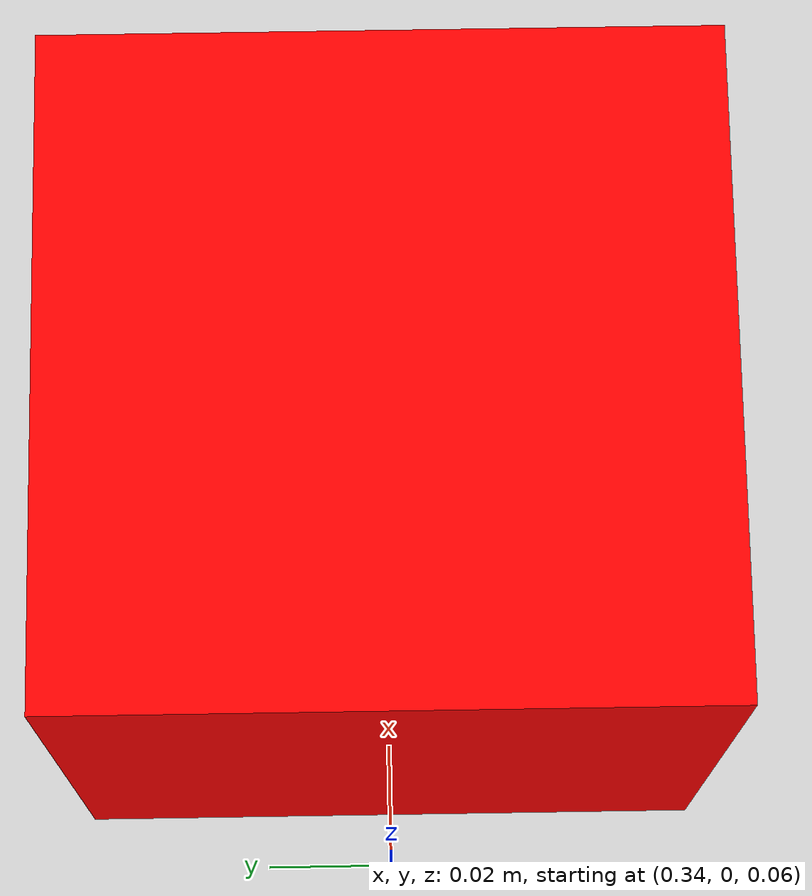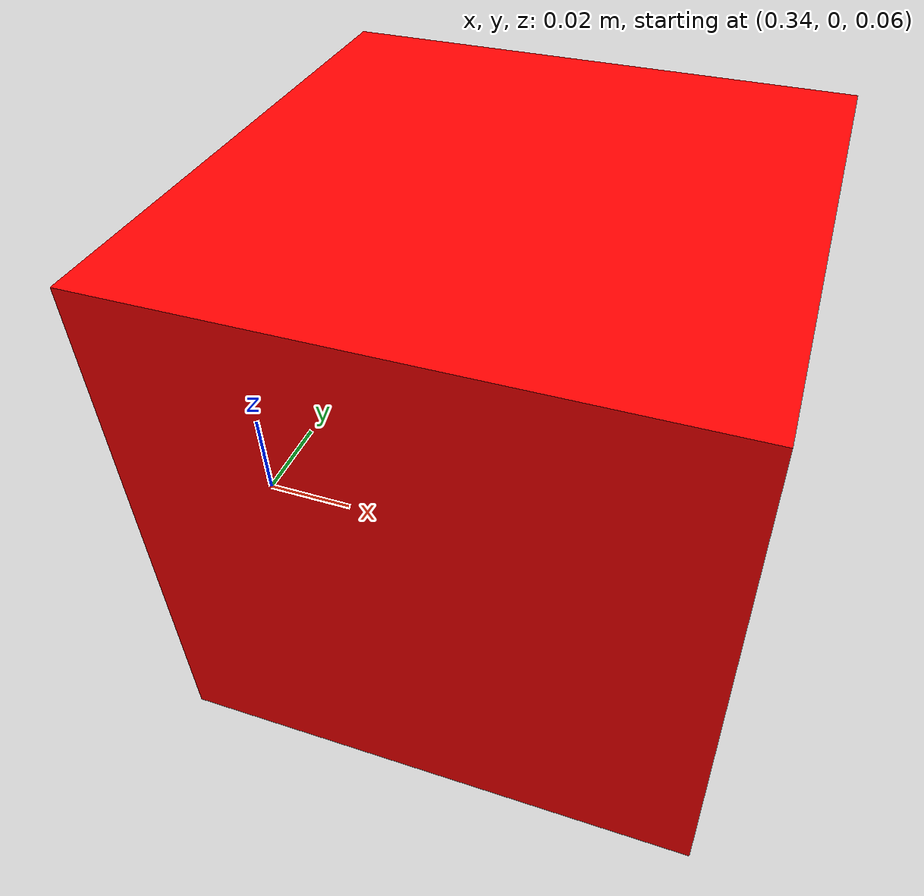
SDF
<?xml version="1.0" ?>
<sdf version="1.7">
  <model name="pickup_box">
    <pose>0.4 0 0.1 0 0 0</pose>
    <static>false</static>
    <link name="box_link">
      <collision name="collision">
        <geometry><box><size>0.1 0.1 0.1</size></box></geometry>
        <surface>
          <friction>
            <ode>
              <mu>0.8</mu>
              <mu2>0.8</mu2>
            </ode>
          </friction>
        </surface>
      </collision>
      <visual name="visual">
        <geometry><box><size>0.1 0.1 0.1</size></box></geometry>
        <material>
          <ambient>1 0 0 1</ambient>
          <diffuse>1 0 0 1</diffuse>
          <specular>0.1 0.1 0.1 1</specular>
        </material>
      </visual>
      <inertial>
        <mass>1.0</mass>
        <inertia>
          <ixx>0.0067</ixx>
          <iyy>0.0067</iyy>
          <izz>0.0067</izz>
        </inertia>
      </inertial>
    </link>
  </model>
</sdf>
